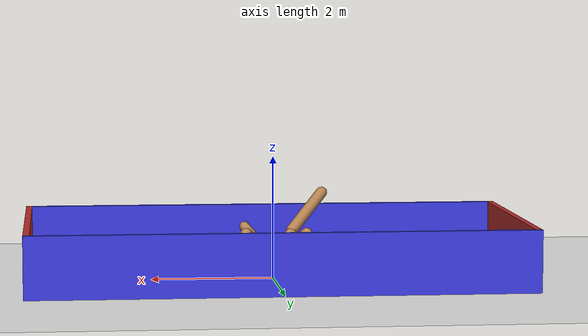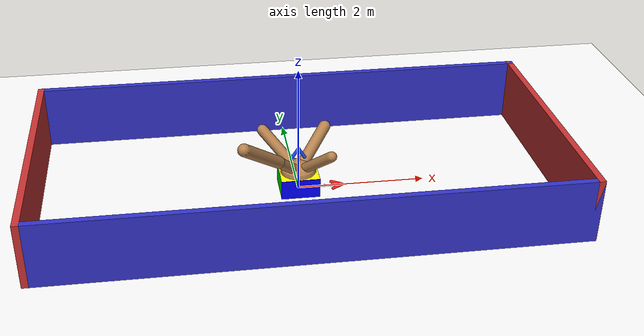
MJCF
<mujoco model="dex-gripper">
  <asset>
    <texture name="skybox" type="skybox" builtin="gradient" rgb1=".2 .3 .4" rgb2="0 0 0" width="800" height="800" mark="random" markrgb="1 1 1"/>
    <texture name="grid" type="2d" builtin="checker" rgb1=".2 .1 .2" rgb2=".3 .2 .3" width="300" height="300" mark="edge" markrgb=".3 .2 .3"/>
    <material name="grid" texture="grid" texrepeat="1 1" texuniform="true" reflectance=".2"/>
    <material name="self" rgba=".7 .5 .3 1"/>
  </asset>
  <visual>
    <headlight ambient=".4 .4 .4" diffuse=".8 .8 .8" specular="0.1 0.1 0.1"/>
    <map znear=".001"/>
    <quality shadowsize="16384"/>
  </visual>
  <compiler coordinate="local" angle="degree" inertiafromgeom="true"/>
  <option integrator="RK4" timestep="0.01"/>
  <default>
    <joint armature="1" damping="1" limited="true"/>
    <geom conaffinity="0" condim="3" density="5.0" friction="1 0.5 0.5" margin="0.01" rgba=".7 .5 .3 1"/>
  </default>
  <worldbody>
    <light cutoff="100" diffuse="1 1 1" dir="0.3 0 -1.3" directional="true" exponent="1" pos="-30 0 130" specular=".1 .1 .1"/>
    <geom conaffinity="1" condim="3" name="floor" pos="0 0 0" rgba="1 1 1 1" size="200 200 .125" type="plane" material="grid"/>
    <!-- Fixed gripper base: no root slide joints anymore -->
    <body name="0" pos="0 0 0.3" gravcomp="1">
      <camera name="track" mode="fixed" pos="0 10 5" quat="0 0 0.547 0.892"/>
      <geom pos="0 0 0" size="0.277201 0.270934 0.176202" type="ellipsoid"/>
      <!-- Arm 1: flipped upward -->
      <body name="1" pos="0 0 0" gravcomp="1">
        <joint axis="-0.707107 0.707107 0" name="1_joint" pos="0 0 0" range="-45 45" type="hinge" damping="0"/>
        <geom fromto="-0.067059 -0.066931 -0.069471 0.482645 0.48172 0.5" size="0.092998 0.092998 0.092998" type="capsule"/>
      </body>
      <!-- Arm 2: flipped upward -->
      <body name="2" pos="0 0 0" gravcomp="1">
        <joint axis="-0.707107 -0.707107 0" name="2_joint" pos="0 0 0" range="-45 45" type="hinge" damping="0"/>
        <geom fromto="0.059399 -0.058352 -0.059406 -0.499937 0.491127 0.5" size="0.08688 0.08688 0.08688" type="capsule"/>
      </body>
      <!-- Arm 3: flipped upward -->
      <body name="3" pos="0 0 0" gravcomp="1">
        <joint axis="0.707107 -0.707107 0" name="3_joint" pos="0 0 0" range="-45 45" type="hinge" damping="0"/>
        <geom fromto="0.040159 0.047724 -0.047758 -0.420444 -0.499642 0.5" size="0.08244 0.08244 0.08244" type="capsule"/>
        <body name="13" pos="-0.420444 -0.499642 0.5" gravcomp="1">
          <joint axis="0.707107 -0.707107 0" name="13_joint" pos="0 0 0" range="-45 45" type="hinge" damping="0"/>
          <geom fromto="0.062102 0.062726 -0.063049 -0.49249 -0.497442 0.5" size="0.094857 0.094857 0.094857" type="capsule"/>
        </body>
      </body>
      <!-- Arm 4: flipped upward -->
      <body name="4" pos="0 0 0" gravcomp="1">
        <joint axis="0.707107 0.707107 0" name="4_joint" pos="0 0 0" range="-45 45" type="hinge" damping="0"/>
        <geom fromto="-0.038242 0.043959 -0.044322 0.431411 -0.495907 0.5" size="0.081507 0.081507 0.081507" type="capsule"/>
      </body>
    </body>
    <!-- Box starts above the gripper -->
    <body name="box" pos="0 0 0">
      <freejoint name="box_joint"/>
      <!-- Top (Yellow) -->
      <geom name="box_top" type="box" pos="0 0 0.295" size="0.3 0.3 0.005" rgba="1 1 0 1" density="10" friction="2.5 0.1 0.05" contype="1" conaffinity="1"/>
      <!-- Bottom (White) -->
      <geom name="box_bottom" type="box" pos="0 0 -0.295" size="0.3 0.3 0.005" rgba="1 1 1 1" density="10" friction="2.5 0.1 0.05" contype="1" conaffinity="1"/>
      <!-- Front (Red) -->
      <geom name="box_front" type="box" pos="0 0.295 0" size="0.3 0.005 0.3" rgba="1 0 0 1" density="10" friction="2.5 0.1 0.05" contype="1" conaffinity="1"/>
      <!-- Back (Blue) -->
      <geom name="box_back" type="box" pos="0 -0.295 0" size="0.3 0.005 0.3" rgba="0 0 1 1" density="10" friction="2.5 0.1 0.05" contype="1" conaffinity="1"/>
      <!-- Left (Green) -->
      <geom name="box_left" type="box" pos="-0.295 0 0" size="0.005 0.3 0.3" rgba="0 1 0 1" density="10" friction="2.5 0.1 0.05" contype="1" conaffinity="1"/>
      <!-- Right (Magenta) -->
      <geom name="box_right" type="box" pos="0.295 0 0" size="0.005 0.3 0.3" rgba="1 0 1 1" density="10" friction="2.5 0.1 0.05" contype="1" conaffinity="1"/>
    </body>
    <!-- RGB arrows visualize the target orientation and never participate in collisions. -->
    <body name="goal_orientation_frame" pos="0 0 0">
      <!-- Goal X axis (red). -->
      <geom name="goal_axis_x_shaft" type="capsule" fromto="0 0 0 0.7 0 0" size="0.018" rgba="1 0.1 0.1 0.9" contype="0" conaffinity="0"/>
      <geom name="goal_axis_x_head_pos" type="capsule" fromto="0.7 0 0 0.54 0.1 0" size="0.025" rgba="1 0.1 0.1 0.9" contype="0" conaffinity="0"/>
      <geom name="goal_axis_x_head_neg" type="capsule" fromto="0.7 0 0 0.54 -0.1 0" size="0.025" rgba="1 0.1 0.1 0.9" contype="0" conaffinity="0"/>
      <!-- Goal Y axis (green). -->
      <geom name="goal_axis_y_shaft" type="capsule" fromto="0 0 0 0 0.7 0" size="0.018" rgba="0.1 1 0.1 0.9" contype="0" conaffinity="0"/>
      <geom name="goal_axis_y_head_pos" type="capsule" fromto="0 0.7 0 0.1 0.54 0" size="0.025" rgba="0.1 1 0.1 0.9" contype="0" conaffinity="0"/>
      <geom name="goal_axis_y_head_neg" type="capsule" fromto="0 0.7 0 -0.1 0.54 0" size="0.025" rgba="0.1 1 0.1 0.9" contype="0" conaffinity="0"/>
      <!-- Goal Z axis (blue). -->
      <geom name="goal_axis_z_shaft" type="capsule" fromto="0 0 0 0 0 0.7" size="0.018" rgba="0.1 0.3 1 0.9" contype="0" conaffinity="0"/>
      <geom name="goal_axis_z_head_pos" type="capsule" fromto="0 0 0.7 0.1 0 0.54" size="0.025" rgba="0.1 0.3 1 0.9" contype="0" conaffinity="0"/>
      <geom name="goal_axis_z_head_neg" type="capsule" fromto="0 0 0.7 -0.1 0 0.54" size="0.025" rgba="0.1 0.3 1 0.9" contype="0" conaffinity="0"/>
    </body>
    <body name="box_walls" pos="0 0 0">
      <geom name="wall_left" type="box" pos="-4.0 0 0.5" size="0.05 2.05 0.5" rgba="0.8 0.2 0.2 1" contype="1" conaffinity="1"/>
      <geom name="wall_right" type="box" pos="4.0 0 0.5" size="0.05 2.05 0.5" rgba="0.8 0.2 0.2 1" contype="1" conaffinity="1"/>
      <geom name="wall_front" type="box" pos="0 2.0 0.5" size="4.05 0.05 0.5" rgba="0.2 0.2 0.8 1" contype="1" conaffinity="1"/>
      <geom name="wall_back" type="box" pos="0 -2.0 0.5" size="4.05 0.05 0.5" rgba="0.2 0.2 0.8 1" contype="1" conaffinity="1"/>
    </body>
  </worldbody>
  <actuator>
    <!-- Only the finger joints remain actuated -->
    <motor ctrllimited="true" ctrlrange="-1.0 1.0" joint="1_joint" gear="62.315175" name="1_joint"/>
    <motor ctrllimited="true" ctrlrange="-1.0 1.0" joint="2_joint" gear="96.010415" name="2_joint"/>
    <motor ctrllimited="true" ctrlrange="-1.0 1.0" joint="3_joint" gear="95.909449" name="3_joint"/>
    <motor ctrllimited="true" ctrlrange="-1.0 1.0" joint="4_joint" gear="70.499579" name="4_joint"/>
    <motor ctrllimited="true" ctrlrange="-1.0 1.0" joint="13_joint" gear="88.947474" name="13_joint"/>
  </actuator>
</mujoco>
